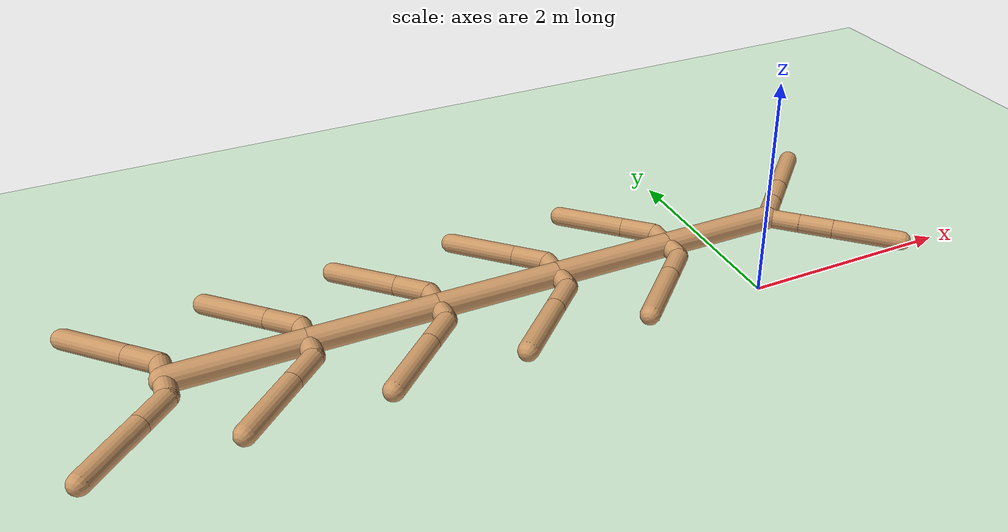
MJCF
<mujoco model="ant">
  <size njmax="2000" nconmax="1000"/>
  <compiler angle="degree" coordinate="local" inertiafromgeom="true"/>
  <option integrator="RK4" timestep="0.005"/>
  <custom>
    <numeric data="0.0 0.0 0.55 1.0 0.0 0.0 0.0 0.0 1.0 0.0 -1.0 0.0 -1.0 0.0 1.0" name="init_qpos"/>
  </custom>
  <default>
    <joint armature="1" damping="1" limited="true"/>
    <geom conaffinity="0" condim="3" density="5.0" friction="1 0.5 0.5" margin="0.01" rgba="0.8 0.6 0.4 1"/>
  </default>
  <asset>
    <texture builtin="gradient" height="100" rgb1="1 1 1" rgb2="0 0 0" type="skybox" width="100"/>
    <texture builtin="flat" height="1278" mark="cross" markrgb="1 1 1" name="texgeom" random="0.01" rgb1="0.8 0.6 0.4" rgb2="0.8 0.6 0.4" type="cube" width="127"/>
    <texture builtin="checker" height="100" name="texplane" rgb1="0 0 0" rgb2="0.8 0.8 0.8" type="2d" width="100"/>
    <material name="MatPlane" reflectance="0.5" shininess="1" specular="1" texrepeat="60 60" texture="texplane"/>
    <material name="geom" texture="texgeom" texuniform="true"/>
  </asset>
  <worldbody>
    <light cutoff="100" diffuse="1 1 1" dir="-0 0 -1.3" directional="true" exponent="1" pos="0 0 1.3" specular=".1 .1 .1"/>
    <geom conaffinity="1" condim="3" material="MatPlane" name="floor" pos="0 0 0" rgba="0.8 0.9 0.8 1" size="40 40 40" type="plane"/>
    <body name="torso_0" pos="0 0 0.75">
      <camera name="track" mode="trackcom" pos="0 -3 0.3" xyaxes="1 0 0 0 0 1"/>
      <joint armature="0" damping="0" limited="false" margin="0.01" name="root" pos="0 0 0" type="free"/>
      <body name="front_left_leg_0" pos="0 0 0">
        <geom fromto="0.0 0.0 0.0 0.2 0.2 0.0" name="aux1_geom_0" size="0.08" type="capsule"/>
        <body name="aux1_0" pos="0.2 0.2 0">
          <joint axis="0 0 1" name="hip1_0" pos="0.0 0.0 0.0" range="-30 30" type="hinge"/>
          <geom fromto="0.0 0.0 0.0 0.2 0.2 0.0" name="left_leg_geom_0" size="0.08" type="capsule"/>
          <body pos="0.2 0.2 0">
            <joint axis="-1 1 0" name="ankle1_0" pos="0.0 0.0 0.0" range="30 70" type="hinge"/>
            <geom fromto="0.0 0.0 0.0 0.4 0.4 0.0" name="left_ankle_geom_0" size="0.08" type="capsule"/>
          </body>
        </body>
      </body>
      <body name="right_back_leg_0" pos="0 0 0">
        <geom fromto="0.0 0.0 0.0 0.2 -0.2 0.0" name="aux2_geom_0" size="0.08" type="capsule"/>
        <body name="aux2_0" pos="0.2 -0.2 0">
          <joint axis="0 0 1" name="hip2_0" pos="0.0 0.0 0.0" range="-30 30" type="hinge"/>
          <geom fromto="0.0 0.0 0.0 0.2 -0.2 0.0" name="rightback_leg_geom_0" size="0.08" type="capsule"/>
          <body pos="0.2 -0.2 0">
            <joint axis="1 1 0" name="ankle2_0" pos="0.0 0.0 0.0" range="30 70" type="hinge"/>
            <geom fromto="0.0 0.0 0.0 0.4 -0.4 0.0" name="second_ankle_geom_0" size="0.08" type="capsule"/>
          </body>
        </body>
      </body>

        <body name="torso_1" pos="-1 0 0">
            <geom density="100" fromto="1 0 0 0 0 0" size="0.1" type="capsule"/>
            <body name="front_right_leg_1" pos="0 0 0">
              <geom fromto="0.0 0.0 0.0 0.0 0.2 0.0" name="aux1_geom_1" size="0.08" type="capsule"/>
              <body name="aux_2_1" pos="0.0 0.2 0">
                <joint axis="0 0 1" name="hip1_1" pos="0.0 0.0 0.0" range="-30 30" type="hinge"/>
                <geom fromto="0.0 0.0 0.0 -0.2 0.2 0.0" name="right_leg_geom_1" size="0.08" type="capsule"/>
                <body pos="-0.2 0.2 0">
                  <joint axis="1 1 0" name="ankle1_1" pos="0.0 0.0 0.0" range="-70 -30" type="hinge"/>
                  <geom fromto="0.0 0.0 0.0 -0.4 0.4 0.0" name="right_ankle_geom_1" size="0.08" type="capsule"/>
                </body>
              </body>
            </body>
            <body name="back_leg_1" pos="0 0 0">
              <geom fromto="0.0 0.0 0.0 0.0 -0.2 0.0" name="aux2_geom_1" size="0.08" type="capsule"/>
              <body name="aux2_1" pos="0.0 -0.2 0">
                <joint axis="0 0 1" name="hip2_1" pos="0.0 0.0 0.0" range="-30 30" type="hinge"/>
                <geom fromto="0.0 0.0 0.0 -0.2 -0.2 0.0" name="back_leg_geom_1" size="0.08" type="capsule"/>
                <body pos="-0.2 -0.2 0">
                  <joint axis="-1 1 0" name="ankle2_1" pos="0.0 0.0 0.0" range="-70 -30" type="hinge"/>
                  <geom fromto="0.0 0.0 0.0 -0.4 -0.4 0.0" name="third_ankle_geom_1" size="0.08" type="capsule"/>
                </body>
              </body>
            </body>

        <body name="torso_2" pos="-1 0 0">
            <geom density="100" fromto="1 0 0 0 0 0" size="0.1" type="capsule"/>
            <body name="front_right_leg_2" pos="0 0 0">
              <geom fromto="0.0 0.0 0.0 0.0 0.2 0.0" name="aux1_geom_2" size="0.08" type="capsule"/>
              <body name="aux_2_2" pos="0.0 0.2 0">
                <joint axis="0 0 1" name="hip1_2" pos="0.0 0.0 0.0" range="-30 30" type="hinge"/>
                <geom fromto="0.0 0.0 0.0 -0.2 0.2 0.0" name="right_leg_geom_2" size="0.08" type="capsule"/>
                <body pos="-0.2 0.2 0">
                  <joint axis="1 1 0" name="ankle1_2" pos="0.0 0.0 0.0" range="-70 -30" type="hinge"/>
                  <geom fromto="0.0 0.0 0.0 -0.4 0.4 0.0" name="right_ankle_geom_2" size="0.08" type="capsule"/>
                </body>
              </body>
            </body>
            <body name="back_leg_2" pos="0 0 0">
              <geom fromto="0.0 0.0 0.0 0.0 -0.2 0.0" name="aux2_geom_2" size="0.08" type="capsule"/>
              <body name="aux2_2" pos="0.0 -0.2 0">
                <joint axis="0 0 1" name="hip2_2" pos="0.0 0.0 0.0" range="-30 30" type="hinge"/>
                <geom fromto="0.0 0.0 0.0 -0.2 -0.2 0.0" name="back_leg_geom_2" size="0.08" type="capsule"/>
                <body pos="-0.2 -0.2 0">
                  <joint axis="-1 1 0" name="ankle2_2" pos="0.0 0.0 0.0" range="-70 -30" type="hinge"/>
                  <geom fromto="0.0 0.0 0.0 -0.4 -0.4 0.0" name="third_ankle_geom_2" size="0.08" type="capsule"/>
                </body>
              </body>
            </body>

        <body name="torso_3" pos="-1 0 0">
            <geom density="100" fromto="1 0 0 0 0 0" size="0.1" type="capsule"/>
            <body name="front_right_leg_3" pos="0 0 0">
              <geom fromto="0.0 0.0 0.0 0.0 0.2 0.0" name="aux1_geom_3" size="0.08" type="capsule"/>
              <body name="aux_2_3" pos="0.0 0.2 0">
                <joint axis="0 0 1" name="hip1_3" pos="0.0 0.0 0.0" range="-30 30" type="hinge"/>
                <geom fromto="0.0 0.0 0.0 -0.2 0.2 0.0" name="right_leg_geom_3" size="0.08" type="capsule"/>
                <body pos="-0.2 0.2 0">
                  <joint axis="1 1 0" name="ankle1_3" pos="0.0 0.0 0.0" range="-70 -30" type="hinge"/>
                  <geom fromto="0.0 0.0 0.0 -0.4 0.4 0.0" name="right_ankle_geom_3" size="0.08" type="capsule"/>
                </body>
              </body>
            </body>
            <body name="back_leg_3" pos="0 0 0">
              <geom fromto="0.0 0.0 0.0 0.0 -0.2 0.0" name="aux2_geom_3" size="0.08" type="capsule"/>
              <body name="aux2_3" pos="0.0 -0.2 0">
                <joint axis="0 0 1" name="hip2_3" pos="0.0 0.0 0.0" range="-30 30" type="hinge"/>
                <geom fromto="0.0 0.0 0.0 -0.2 -0.2 0.0" name="back_leg_geom_3" size="0.08" type="capsule"/>
                <body pos="-0.2 -0.2 0">
                  <joint axis="-1 1 0" name="ankle2_3" pos="0.0 0.0 0.0" range="-70 -30" type="hinge"/>
                  <geom fromto="0.0 0.0 0.0 -0.4 -0.4 0.0" name="third_ankle_geom_3" size="0.08" type="capsule"/>
                </body>
              </body>
            </body>

        <body name="torso_4" pos="-1 0 0">
            <geom density="100" fromto="1 0 0 0 0 0" size="0.1" type="capsule"/>
            <body name="front_right_leg_4" pos="0 0 0">
              <geom fromto="0.0 0.0 0.0 0.0 0.2 0.0" name="aux1_geom_4" size="0.08" type="capsule"/>
              <body name="aux_2_4" pos="0.0 0.2 0">
                <joint axis="0 0 1" name="hip1_4" pos="0.0 0.0 0.0" range="-30 30" type="hinge"/>
                <geom fromto="0.0 0.0 0.0 -0.2 0.2 0.0" name="right_leg_geom_4" size="0.08" type="capsule"/>
                <body pos="-0.2 0.2 0">
                  <joint axis="1 1 0" name="ankle1_4" pos="0.0 0.0 0.0" range="-70 -30" type="hinge"/>
                  <geom fromto="0.0 0.0 0.0 -0.4 0.4 0.0" name="right_ankle_geom_4" size="0.08" type="capsule"/>
                </body>
              </body>
            </body>
            <body name="back_leg_4" pos="0 0 0">
              <geom fromto="0.0 0.0 0.0 0.0 -0.2 0.0" name="aux2_geom_4" size="0.08" type="capsule"/>
              <body name="aux2_4" pos="0.0 -0.2 0">
                <joint axis="0 0 1" name="hip2_4" pos="0.0 0.0 0.0" range="-30 30" type="hinge"/>
                <geom fromto="0.0 0.0 0.0 -0.2 -0.2 0.0" name="back_leg_geom_4" size="0.08" type="capsule"/>
                <body pos="-0.2 -0.2 0">
                  <joint axis="-1 1 0" name="ankle2_4" pos="0.0 0.0 0.0" range="-70 -30" type="hinge"/>
                  <geom fromto="0.0 0.0 0.0 -0.4 -0.4 0.0" name="third_ankle_geom_4" size="0.08" type="capsule"/>
                </body>
              </body>
            </body>

        <body name="torso_5" pos="-1 0 0">
            <geom density="100" fromto="1 0 0 0 0 0" size="0.1" type="capsule"/>
            <body name="front_right_leg_5" pos="0 0 0">
              <geom fromto="0.0 0.0 0.0 0.0 0.2 0.0" name="aux1_geom_5" size="0.08" type="capsule"/>
              <body name="aux_2_5" pos="0.0 0.2 0">
                <joint axis="0 0 1" name="hip1_5" pos="0.0 0.0 0.0" range="-30 30" type="hinge"/>
                <geom fromto="0.0 0.0 0.0 -0.2 0.2 0.0" name="right_leg_geom_5" size="0.08" type="capsule"/>
                <body pos="-0.2 0.2 0">
                  <joint axis="1 1 0" name="ankle1_5" pos="0.0 0.0 0.0" range="-70 -30" type="hinge"/>
                  <geom fromto="0.0 0.0 0.0 -0.4 0.4 0.0" name="right_ankle_geom_5" size="0.08" type="capsule"/>
                </body>
              </body>
            </body>
            <body name="back_leg_5" pos="0 0 0">
              <geom fromto="0.0 0.0 0.0 0.0 -0.2 0.0" name="aux2_geom_5" size="0.08" type="capsule"/>
              <body name="aux2_5" pos="0.0 -0.2 0">
                <joint axis="0 0 1" name="hip2_5" pos="0.0 0.0 0.0" range="-30 30" type="hinge"/>
                <geom fromto="0.0 0.0 0.0 -0.2 -0.2 0.0" name="back_leg_geom_5" size="0.08" type="capsule"/>
                <body pos="-0.2 -0.2 0">
                  <joint axis="-1 1 0" name="ankle2_5" pos="0.0 0.0 0.0" range="-70 -30" type="hinge"/>
                  <geom fromto="0.0 0.0 0.0 -0.4 -0.4 0.0" name="third_ankle_geom_5" size="0.08" type="capsule"/>
                </body>
              </body>
            </body>
        </body>
</body>
</body>
</body>
</body>

    </body>
  </worldbody>
  <actuator>
    	     <motor ctrllimited="true" ctrlrange="-1.0 1.0" joint="hip1_0" gear="150"/>
                                          <motor ctrllimited="true" ctrlrange="-1.0 1.0" joint="ankle1_0" gear="150"/>
                                          <motor ctrllimited="true" ctrlrange="-1.0 1.0" joint="hip2_0" gear="150"/>
                                          <motor ctrllimited="true" ctrlrange="-1.0 1.0" joint="ankle2_0" gear="150"/>
	     <motor ctrllimited="true" ctrlrange="-1.0 1.0" joint="hip1_1" gear="150"/>
                                          <motor ctrllimited="true" ctrlrange="-1.0 1.0" joint="ankle1_1" gear="150"/>
                                          <motor ctrllimited="true" ctrlrange="-1.0 1.0" joint="hip2_1" gear="150"/>
                                          <motor ctrllimited="true" ctrlrange="-1.0 1.0" joint="ankle2_1" gear="150"/>
	     <motor ctrllimited="true" ctrlrange="-1.0 1.0" joint="hip1_2" gear="150"/>
                                          <motor ctrllimited="true" ctrlrange="-1.0 1.0" joint="ankle1_2" gear="150"/>
                                          <motor ctrllimited="true" ctrlrange="-1.0 1.0" joint="hip2_2" gear="150"/>
                                          <motor ctrllimited="true" ctrlrange="-1.0 1.0" joint="ankle2_2" gear="150"/>
	     <motor ctrllimited="true" ctrlrange="-1.0 1.0" joint="hip1_3" gear="150"/>
                                          <motor ctrllimited="true" ctrlrange="-1.0 1.0" joint="ankle1_3" gear="150"/>
                                          <motor ctrllimited="true" ctrlrange="-1.0 1.0" joint="hip2_3" gear="150"/>
                                          <motor ctrllimited="true" ctrlrange="-1.0 1.0" joint="ankle2_3" gear="150"/>
	     <motor ctrllimited="true" ctrlrange="-1.0 1.0" joint="hip1_4" gear="150"/>
                                          <motor ctrllimited="true" ctrlrange="-1.0 1.0" joint="ankle1_4" gear="150"/>
                                          <motor ctrllimited="true" ctrlrange="-1.0 1.0" joint="hip2_4" gear="150"/>
                                          <motor ctrllimited="true" ctrlrange="-1.0 1.0" joint="ankle2_4" gear="150"/>
	     <motor ctrllimited="true" ctrlrange="-1.0 1.0" joint="hip1_5" gear="150"/>
                                          <motor ctrllimited="true" ctrlrange="-1.0 1.0" joint="ankle1_5" gear="150"/>
                                          <motor ctrllimited="true" ctrlrange="-1.0 1.0" joint="hip2_5" gear="150"/>
                                          <motor ctrllimited="true" ctrlrange="-1.0 1.0" joint="ankle2_5" gear="150"/>

  </actuator>
</mujoco>
